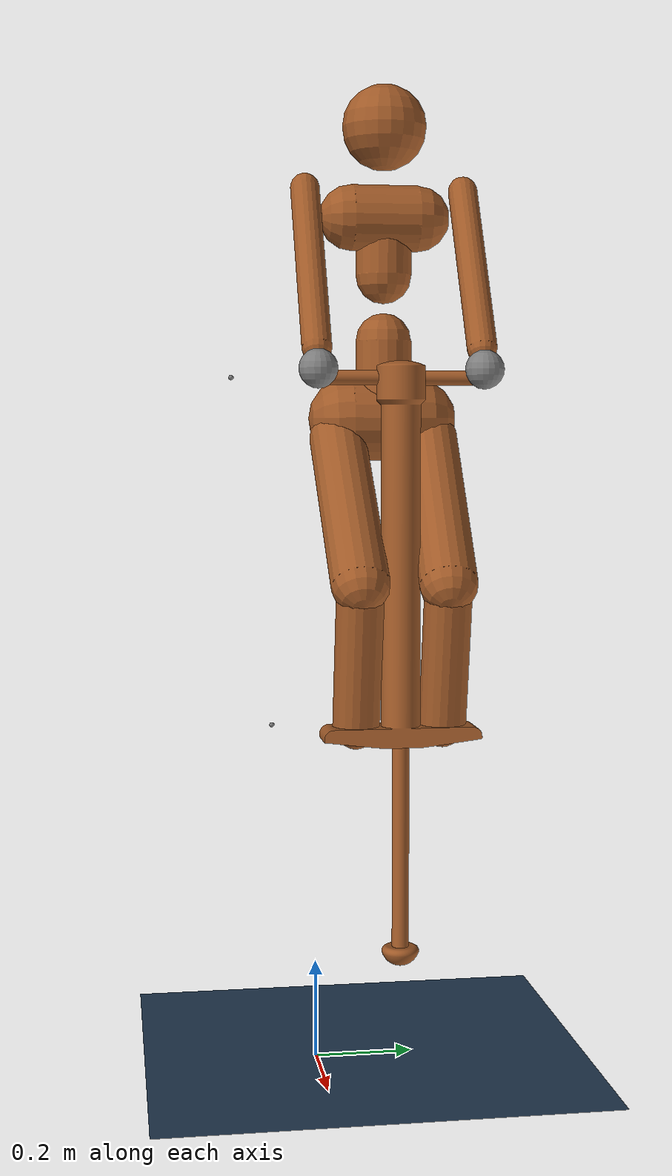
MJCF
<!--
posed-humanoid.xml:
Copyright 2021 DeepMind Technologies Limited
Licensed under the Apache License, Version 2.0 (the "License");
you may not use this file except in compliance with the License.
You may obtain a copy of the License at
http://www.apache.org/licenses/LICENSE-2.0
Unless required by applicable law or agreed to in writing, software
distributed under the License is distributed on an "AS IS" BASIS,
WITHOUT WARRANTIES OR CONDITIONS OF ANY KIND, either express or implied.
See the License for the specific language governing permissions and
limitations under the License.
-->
<mujoco model="robot scene">
  <compiler angle="radian"/>
  <option timestep="0.0025"/>

  <include file="pogo-stick.xml"/>
  <include file="posed-humanoid.xml"/>

  <statistic center="0 0 0.1" extent="0.8"/>

  <visual>
    <headlight diffuse="0.6 0.6 0.6" ambient="0.3 0.3 0.3" specular="0 0 0"/>
    <rgba haze="0.15 0.25 0.35 1"/>
  </visual>

  <asset>
    <texture type="skybox" builtin="gradient" rgb1="0.8 0.8 0.8" rgb2="0 0 0" width="512" height="3072"/>
    <texture type="2d" name="groundplane" builtin="checker" mark="edge" rgb1="0.2 0.3 0.4" rgb2="0.1 0.2 0.3"
      markrgb="0.8 0.8 0.8" width="300" height="300"/>
    <material name="groundplane" texture="groundplane" texuniform="true" texrepeat="5 5" reflectance="0.2"/>
    <texture type="2d" name="wheel_texture" builtin="checker" mark="edge" rgb1="0.0 0.0 0.0" rgb2="0.2 0.2 0.2"
      markrgb="0.3 0.3 0.3" width="300" height="300"/>
    <material name="wheel_material" texture="wheel_texture" texuniform="true" texrepeat="5 5"/>
  </asset>

  <worldbody>
    <light pos="0 0 1.5" dir="-0.5 -0.5 -1" directional="true"/>
    <geom name="floor" size="0 0 0.05" pos="0 0 0" type="plane" material="groundplane"/>
  </worldbody>

  <contact>
    <pair geom1="floor" geom2="pogo_lower" friction="0.4 0.4 0.07 0.001 0.001"/>
    <exclude body1="pelvis" body2="pogo_upper"/>
  </contact>

  <equality>
    <connect name="left_grasp" site1="left_grip" site2="left_hand"/>
    <connect name="right_grasp" site1="right_grip" site2="right_hand"/>
  </equality>

</mujoco>

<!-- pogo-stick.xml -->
<mujoco model="pogo_stick">
    <default>
        <geom type="mesh" density="7230"/>
    </default>
    <asset>
        <mesh name="pogo_lower" file="PogoBottom.STL" scale="0.001 0.001 0.001"/>
        <mesh name="pogo_upper" file="PogoTop.STL" scale="0.001 0.001 0.001"/>
    </asset>
    <worldbody>
        <body name="pogo_upper" pos="0 0 0.2">
            <joint name="pogo_top" type="free"/>
            <geom mesh="pogo_upper" xyaxes="0 1 0 0 0 1"/>
            <site name="left_grip" pos="0 0.17 1.21"/>
            <site name="right_grip" pos="0 -0.17 1.21"/>
            <site name="left_foothold" pos="0 0.09 0.5"/>
            <site name="right_foothold" pos="0 -0.09 0.5"/>
            <body name="pogo_lower">
                <joint name="pogo_bottom" range="-2 2" type="slide" axis="0 0 1" stiffness="25000" damping="0.1" springref="0.1"/>
                <geom name="pogo_lower" mesh="pogo_lower" xyaxes="0 1 0 0 0 1"/>
            </body>
        </body>

    </worldbody>
</mujoco>

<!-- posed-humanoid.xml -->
<mujoco model="Humanoid">

    <compiler inertiafromgeom="true" angle="degree"/>

    <default>
        <joint limited="true" damping="1" armature="0"/>
        <geom condim="1" material="matgeom"/>
        <motor ctrlrange="-.4 .4" ctrllimited="true"/>
    </default>

    <visual>
        <map force="0.1" zfar="30"/>
        <rgba haze="0.15 0.25 0.35 1"/>
        <quality shadowsize="2048"/>
        <global offwidth="800" offheight="800"/>
    </visual>

    <asset>

        <texture name="texgeom" type="cube" builtin="flat" mark="cross" width="127" height="1278"
            rgb1="0.8 0.6 0.4" rgb2="0.8 0.6 0.4" markrgb="1 1 1" random="0.01"/>

        <material name="matgeom" texture="texgeom" texuniform="true" rgba="0.8 0.6 .4 1"/>
    </asset>

    <worldbody>

        <body name="torso" pos="-0.16 0.17 1.756">
            <freejoint name="root"/>
            <geom name="torso1" type="capsule" fromto="0 -.07 0 0 .07 0"  size="0.07"/>
            <geom name="head" type="sphere" pos="0 0 .19" size=".09"/>
            <geom name="uwaist" type="capsule" fromto="-.01 0 0 -.01 0 -0.12" size="0.06"/>
            <body name="lwaist" pos="-.01 0 -0.260" quat="1.000 0 -0.002 0" >
                <geom name="lwaist" type="capsule" fromto="0 0 0 0 0 -0.165"  size="0.06" />
                <joint name="abdomen_z" type="hinge" pos="0 0 0.065" axis="0 0 1" range="-45 45" damping="5" stiffness="20" armature="0.02" />
                <joint name="abdomen_y" type="hinge" pos="0 0 0.065" axis="0 1 0" range="-75 30" damping="5" stiffness="10" armature="0.02" />
                <body name="pelvis" pos="0 0 -0.165" quat="1.000 0 -0.002 0" >
                    <joint name="abdomen_x" type="hinge" pos="0 0 0.1" axis="1 0 0" range="-35 35" damping="5" stiffness="10" armature="0.02" />
                    <geom name="butt" type="capsule" fromto="-.02 -.07 0 -.02 .07 0"  size="0.09" />
                    <body name="right_thigh" pos="0 -0.1 -0.04" >
                        <joint name="right_hip_x" type="hinge" pos="0 0 0" axis="1 0 0" range="-25 5"   damping="5" stiffness="10" armature="0.01" />
                        <joint name="right_hip_z" type="hinge" pos="0 0 0" axis="0 0 1" range="-60 35"  damping="5" stiffness="10" armature="0.01" />
                        <joint name="right_hip_y" type="hinge" pos="0 0 0" axis="0 1 0" range="-120 20" damping="5" stiffness="20" armature="0.01" />
                        <geom name="right_thigh1" type="capsule" fromto="0 0 0 0.266 0.01 -.299"  size="0.06" />
                        <body name="right_shin" pos="0.266 0.01 -0.299" >
                            <joint name="right_knee" type="hinge" pos="0 0 .02" axis="0 -1 0" range="-160 -2" stiffness="1" armature="0.0060" />
                            <geom name="right_shin1" type="capsule" fromto="0 0 0 -0.066 0 -.293"   size="0.049" />
                            <site name="right_foot" pos="-0.066 0 -.293"/>
                        </body>
                    </body>
                    <body name="left_thigh" pos="0 0.1 -0.04" >
                        <joint name="left_hip_x" type="hinge" pos="0 0 0" axis="-1 0 0" range="-25 5"  damping="5" stiffness="10" armature="0.01" />
                        <joint name="left_hip_z" type="hinge" pos="0 0 0" axis="0 0 -1" range="-60 35" damping="5" stiffness="10" armature="0.01" />
                        <joint name="left_hip_y" type="hinge" pos="0 0 0" axis="0 1 0" range="-120 20" damping="5" stiffness="20" armature="0.01" />
                        <geom name="left_thigh1" type="capsule" fromto="0 0 0 0.266 -0.01 -.299"  size="0.06" />
                        <body name="left_shin" pos="0.266 -0.01 -0.299" >
                            <joint name="left_knee" type="hinge" pos="0 0 .02" axis="0 -1 0" range="-160 -2" stiffness="1" armature="0.0060" />
                            <geom name="left_shin1" type="capsule" fromto="0 0 0 -0.066 0 -.293"   size="0.049" />
                            <site name="left_foot" pos="-0.066 0 -.293"/>
                        </body>
                    </body>
                </body>
            </body>
            <body name="right_upper_arm" pos="0 -0.17 0.06" >
                <joint name="right_shoulder" type="hinge" pos="0 0 0" axis="0 -1 0"  range="-85 60" stiffness="1" armature="0.0068" />
                <geom name="right_arm" type="capsule" fromto="0 0 0 0.2 0 -0.346" size="0.031 0.16"/>
                <body name="right_wrist" pos="0.225 0 -0.389">
                    <site name="right_hand" type="sphere" pos="0 0 0" size="0.04"/>
                </body>
            </body>
            <body name="left_upper_arm" pos="0 0.17 0.06" >
                <joint name="left_shoulder" type="hinge" pos="0 0 0" axis="0 1 0" range="-60 85" stiffness="1" armature="0.0068" />
                <geom name="left_arm" type="capsule" fromto="0 0 0 .2 0 -0.346" size="0.031 0.16"/>
                <body name="left_wrist" pos="0.225 0 -0.389">
                    <site name="left_hand" type="sphere" pos="0 0 0" size="0.04"/>
                </body>
            </body>
        </body>
    </worldbody>

    <actuator>
        <motor name="abdomen_y"       gear="200" joint="abdomen_y" />
        <motor name="abdomen_z"       gear="200" joint="abdomen_z" />
        <motor name="abdomen_x"       gear="200" joint="abdomen_x" />
        <motor name="right_knee"      gear="400" joint="right_knee" />
        <motor name="left_knee"       gear="400" joint="left_knee" />
        <motor name="right_shoulder" gear="100" joint="right_shoulder" />
        <motor name="left_shoulder"  gear="100" joint="left_shoulder" />
    </actuator>

</mujoco>
